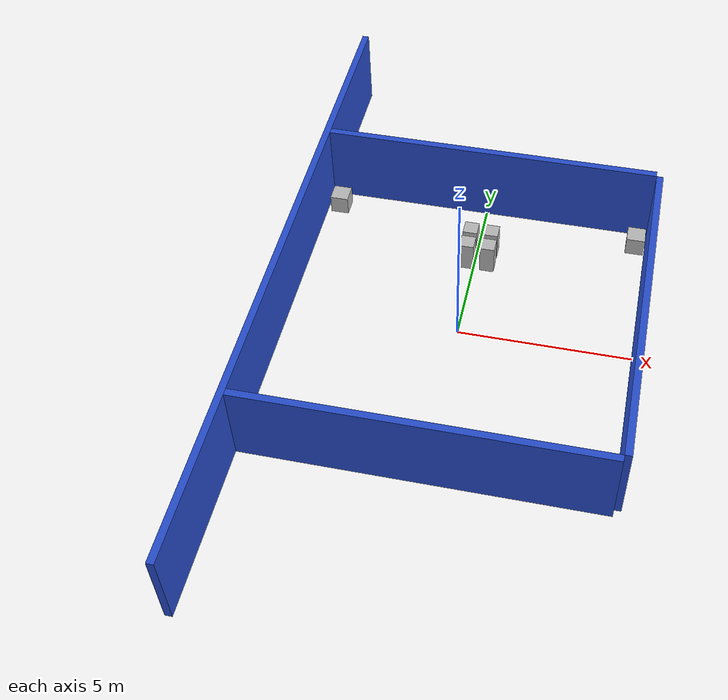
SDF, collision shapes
<?xml version='1.0'?>
<sdf version='1.4'>
  <model name="living_room">
    <link name ="south_wall">
      <visual name="south_wall">
	<pose>0 -5.1 1.25 0 -0 0</pose>
        <geometry>
          <box>
            <size>10 0.2 2.5</size>
          </box>
        </geometry>
        <material>
          <script>
            <uri>file://media/materials/scripts/gazebo.material</uri>
            <name>Gazebo/Blue</name>
          </script>
        </material>
      </visual>
      <collision name='south_wall'>
        <geometry>
          <box>
	    <size>10 0.2 2.5</size>
          </box>
        </geometry>
        <pose>0 -5.1 1.25 0 -0 0</pose>
      </collision>
    </link>
    <link name ="west_wall">
      <visual name="west_wall">
	<pose>-5.1 0 1.25 0 -0 0</pose>
        <geometry>
          <box>
            <size>0.2 10 2.5</size>
          </box>
        </geometry>
        <material>
          <script>
            <uri>file://media/materials/scripts/gazebo.material</uri>
            <name>Gazebo/Blue</name>
          </script>
        </material>
      </visual>
      <collision name='west_wall'>
        <geometry>
          <box>
	    <size>0.2 20 2.5</size>
          </box>
        </geometry>
        <pose>-5.1 0 1.25 0 -0 0</pose>
      </collision>
    </link>
    <link name ="north_wall">
      <visual name="north_wall">
	<pose>0 5.1 1.25 0 -0 0</pose>
        <geometry>
          <box>
            <size>10 0.2 2.5</size>
          </box>
        </geometry>
        <material>
          <script>
            <uri>file://media/materials/scripts/gazebo.material</uri>
            <name>Gazebo/Blue</name>
          </script>
        </material>
      </visual>
      <collision name='west_wall'>
        <geometry>
          <box>
	    <size>10 0.2 2.5</size>
          </box>
        </geometry>
        <pose>0 5.1 1.25 0 -0 0</pose>
      </collision>
    </link>
    <link name ="east_wall">
      <visual name="east_wall">
	<pose>5.1 0 1.25 0 -0 0</pose>
        <geometry>
          <box>
            <size>0.2 10 2.5</size>
          </box>
        </geometry>
        <material>
          <script>
            <uri>file://media/materials/scripts/gazebo.material</uri>
            <name>Gazebo/Blue</name>
          </script>
        </material>
      </visual>
      <collision name='east_wall'>
        <geometry>
          <box>
	    <size>0.2 10 2.5</size>
          </box>
        </geometry>
        <pose>5.1 0 1.25 0 -0 0</pose>
      </collision>
    </link>
    <link name="chair">
      <visual name="chair">
	<pose>-0.32 3.2 0 0 0 0</pose>
	<geometry>
	  <mesh><uri>model://living_room/meshes/chair2.dae</uri></mesh>
        </geometry>
      </visual>
      <collision name="chair">
	<pose>-0.32 3.2 0 0 0 0</pose>
	<geometry>
	  <box>
	    <size>0.44 0.45 0.95</size>
	  </box>
        </geometry>
      </collision>
    </link>
    <link name="chair2">
      <visual name="chair2">
	<pose>0.32 3.2 0 0 0 0</pose>
	<geometry>
	  <mesh><uri>model://living_room/meshes/chair2.dae</uri></mesh>
        </geometry>
      </visual>
      <collision name="chair2">
	<pose>0.32 3.2 0 0 0 0</pose>
	<geometry>
	  <box>
	    <size>0.44 0.45 0.95</size>
	  </box>
        </geometry>
      </collision>
    </link>
    <link name="chair3">
      <visual name="chair3">
	<pose>-0.32 3.8 0 0 0 0</pose>
	<geometry>
	  <mesh><uri>model://living_room/meshes/chair3.dae</uri></mesh>
        </geometry>
      </visual>
      <collision name="chair3">
	<pose>-0.32 3.8 0 0 0 0</pose>
	<geometry>
	  <box>
	    <size>0.44 0.45 0.95</size>
	  </box>
        </geometry>
      </collision>
    </link>
    <link name="chair4">
      <visual name="chair4">
	<pose>0.32 3.8 0 0 0 0</pose>
	<geometry>
	  <mesh><uri>model://living_room/meshes/chair3.dae</uri></mesh>
        </geometry>
      </visual>
      <collision name="chair4">
	<pose>0.32 3.8 0 0 0 0</pose>
	<geometry>
	  <box>
	    <size>0.44 0.45 0.95</size>
	  </box>
        </geometry>
      </collision>
    </link>
    <link name="plant">
      <visual name="plant">
	<pose>4.7 4.7 0 0 0 0</pose>
	<geometry>
	  <mesh><uri>model://living_room/meshes/plant1.dae</uri></mesh>
        </geometry>
      </visual>
      <collision name="plant">
	<pose>4.7 4.7 0 0 0 0</pose>
	<geometry>
	  <box>
	    <size>0.55 0.55 0.6</size>
	  </box>
        </geometry>
      </collision>
    </link>
    <link name="plant2">
      <visual name="plant2">
	<pose>-4.7 4.7 0 0 0 0</pose>
	<geometry>
	  <mesh><uri>model://living_room/meshes/plant1.dae</uri></mesh>
        </geometry>
      </visual>
      <collision name="plant2">
	<pose>-4.7 4.7 0 0 0 0</pose>
	<geometry>
	  <box>
	    <size>0.55 0.55 0.6</size>
	  </box>
        </geometry>
      </collision>
    </link>
    <link name="plant3">
      <visual name="plant3">
	<pose>-4.7 -4.7 0 0 0 0</pose>
	<geometry>
	  <mesh><uri>model://living_room/meshes/plant1.dae</uri></mesh>
        </geometry>
      </visual>
      <collision name="plant3">
	<pose>-4.7 -4.7 0 0 0 0</pose>
	<geometry>
	  <box>
	    <size>0.55 0.55 0.6</size>
	  </box>
        </geometry>
      </collision>
    </link>
    <link name="plant4">
      <visual name="plant4">
	<pose>4.7 -4.7 0 0 0 0</pose>
	<geometry>
	  <mesh><uri>model://living_room/meshes/plant1.dae</uri></mesh>
        </geometry>
      </visual>
      <collision name="plant4">
	<pose>4.7 -4.7 0 0 0 0</pose>
	<geometry>
	  <box>
	    <size>0.55 0.55 0.6</size>
	  </box>
        </geometry>
      </collision>
    </link>
    <static>1</static>
  </model>
</sdf>
